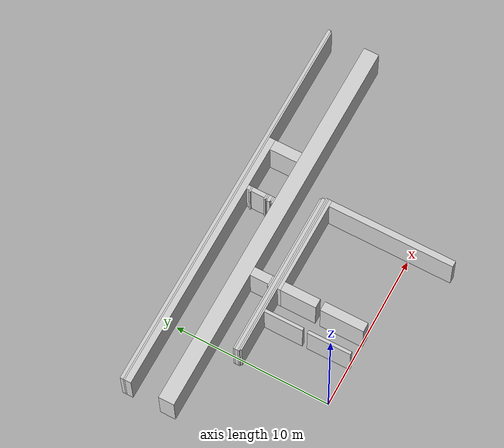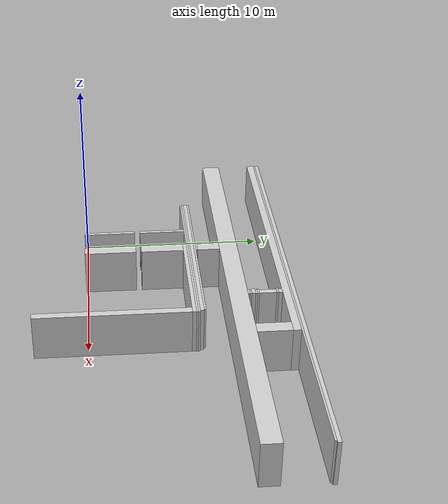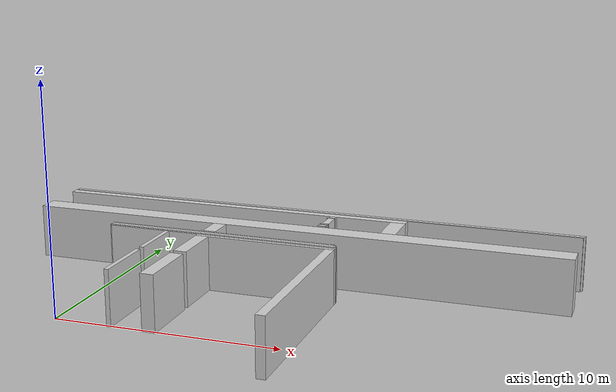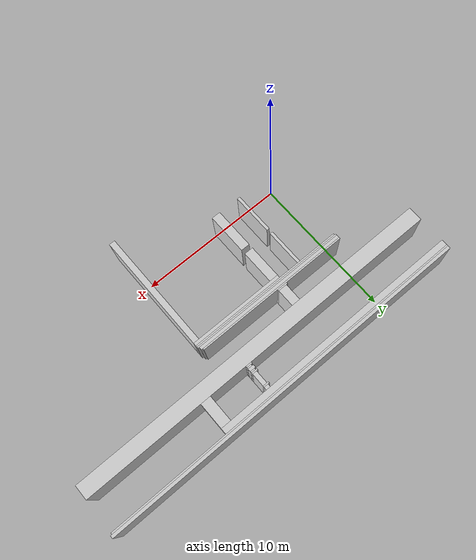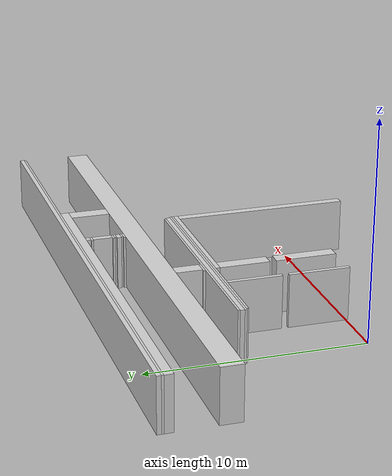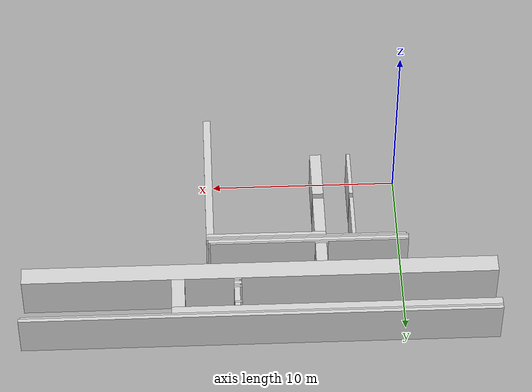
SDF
<sdf version="1.8">
 <model name="campus_first_floor">
  <static>true</static>
  <link name="wall_5">
   <pose>7.70000 10.70000 1.25000 0 0 0</pose>
   <collision name="collision"><geometry><box><size>25.30000 0.20000 2.50000</size></box></geometry></collision>
   <visual name="visual">
    <geometry><box><size>25.30000 0.20000 2.50000</size></box></geometry>
    <material>
     <ambient>0.72 0.72 0.72 1</ambient>
     <diffuse>0.82 0.82 0.82 1</diffuse>
     <specular>0.05 0.05 0.05 1</specular>
    </material>
   </visual>
  </link>
  <link name="wall_6">
   <pose>7.65000 10.55000 1.25000 0 0 0</pose>
   <collision name="collision"><geometry><box><size>25.20000 0.10000 2.50000</size></box></geometry></collision>
   <visual name="visual">
    <geometry><box><size>25.20000 0.10000 2.50000</size></box></geometry>
    <material>
     <ambient>0.72 0.72 0.72 1</ambient>
     <diffuse>0.82 0.82 0.82 1</diffuse>
     <specular>0.05 0.05 0.05 1</specular>
    </material>
   </visual>
  </link>
  <link name="wall_7">
   <pose>3.70000 10.30000 1.25000 0 0 0</pose>
   <collision name="collision"><geometry><box><size>17.30000 0.40000 2.50000</size></box></geometry></collision>
   <visual name="visual">
    <geometry><box><size>17.30000 0.40000 2.50000</size></box></geometry>
    <material>
     <ambient>0.72 0.72 0.72 1</ambient>
     <diffuse>0.82 0.82 0.82 1</diffuse>
     <specular>0.05 0.05 0.05 1</specular>
    </material>
   </visual>
  </link>
  <link name="wall_10">
   <pose>8.90000 10.00000 1.25000 0 0 0</pose>
   <collision name="collision"><geometry><box><size>0.30000 0.20000 2.50000</size></box></geometry></collision>
   <visual name="visual">
    <geometry><box><size>0.30000 0.20000 2.50000</size></box></geometry>
    <material>
     <ambient>0.72 0.72 0.72 1</ambient>
     <diffuse>0.82 0.82 0.82 1</diffuse>
     <specular>0.05 0.05 0.05 1</specular>
    </material>
   </visual>
  </link>
  <link name="wall_11">
   <pose>8.85000 9.85000 1.25000 0 0 0</pose>
   <collision name="collision"><geometry><box><size>0.40000 0.10000 2.50000</size></box></geometry></collision>
   <visual name="visual">
    <geometry><box><size>0.40000 0.10000 2.50000</size></box></geometry>
    <material>
     <ambient>0.72 0.72 0.72 1</ambient>
     <diffuse>0.82 0.82 0.82 1</diffuse>
     <specular>0.05 0.05 0.05 1</specular>
    </material>
   </visual>
  </link>
  <link name="wall_12">
   <pose>8.90000 9.35000 1.25000 0 0 0</pose>
   <collision name="collision"><geometry><box><size>0.30000 0.90000 2.50000</size></box></geometry></collision>
   <visual name="visual">
    <geometry><box><size>0.30000 0.90000 2.50000</size></box></geometry>
    <material>
     <ambient>0.72 0.72 0.72 1</ambient>
     <diffuse>0.82 0.82 0.82 1</diffuse>
     <specular>0.05 0.05 0.05 1</specular>
    </material>
   </visual>
  </link>
  <link name="wall_13">
   <pose>8.85000 8.85000 1.25000 0 0 0</pose>
   <collision name="collision"><geometry><box><size>0.40000 0.10000 2.50000</size></box></geometry></collision>
   <visual name="visual">
    <geometry><box><size>0.40000 0.10000 2.50000</size></box></geometry>
    <material>
     <ambient>0.72 0.72 0.72 1</ambient>
     <diffuse>0.82 0.82 0.82 1</diffuse>
     <specular>0.05 0.05 0.05 1</specular>
    </material>
   </visual>
  </link>
  <link name="wall_14">
   <pose>8.90000 8.75000 1.25000 0 0 0</pose>
   <collision name="collision"><geometry><box><size>0.30000 0.10000 2.50000</size></box></geometry></collision>
   <visual name="visual">
    <geometry><box><size>0.30000 0.10000 2.50000</size></box></geometry>
    <material>
     <ambient>0.72 0.72 0.72 1</ambient>
     <diffuse>0.82 0.82 0.82 1</diffuse>
     <specular>0.05 0.05 0.05 1</specular>
    </material>
   </visual>
  </link>
  <link name="wall_15">
   <pose>8.85000 8.60000 1.25000 0 0 0</pose>
   <collision name="collision"><geometry><box><size>0.40000 0.20000 2.50000</size></box></geometry></collision>
   <visual name="visual">
    <geometry><box><size>0.40000 0.20000 2.50000</size></box></geometry>
    <material>
     <ambient>0.72 0.72 0.72 1</ambient>
     <diffuse>0.82 0.82 0.82 1</diffuse>
     <specular>0.05 0.05 0.05 1</specular>
    </material>
   </visual>
  </link>
  <link name="wall_16">
   <pose>8.90000 8.45000 1.25000 0 0 0</pose>
   <collision name="collision"><geometry><box><size>0.30000 0.10000 2.50000</size></box></geometry></collision>
   <visual name="visual">
    <geometry><box><size>0.30000 0.10000 2.50000</size></box></geometry>
    <material>
     <ambient>0.72 0.72 0.72 1</ambient>
     <diffuse>0.82 0.82 0.82 1</diffuse>
     <specular>0.05 0.05 0.05 1</specular>
    </material>
   </visual>
  </link>
  <link name="wall_17">
   <pose>12.00000 9.20000 1.25000 0 0 0</pose>
   <collision name="collision"><geometry><box><size>0.70000 1.80000 2.50000</size></box></geometry></collision>
   <visual name="visual">
    <geometry><box><size>0.70000 1.80000 2.50000</size></box></geometry>
    <material>
     <ambient>0.72 0.72 0.72 1</ambient>
     <diffuse>0.82 0.82 0.82 1</diffuse>
     <specular>0.05 0.05 0.05 1</specular>
    </material>
   </visual>
  </link>
  <link name="wall_18">
   <pose>8.85000 8.35000 1.25000 0 0 0</pose>
   <collision name="collision"><geometry><box><size>0.40000 0.10000 2.50000</size></box></geometry></collision>
   <visual name="visual">
    <geometry><box><size>0.40000 0.10000 2.50000</size></box></geometry>
    <material>
     <ambient>0.72 0.72 0.72 1</ambient>
     <diffuse>0.82 0.82 0.82 1</diffuse>
     <specular>0.05 0.05 0.05 1</specular>
    </material>
   </visual>
  </link>
  <link name="wall_21">
   <pose>7.65000 7.80000 1.25000 0 0 0</pose>
   <collision name="collision"><geometry><box><size>25.20000 1.00000 2.50000</size></box></geometry></collision>
   <visual name="visual">
    <geometry><box><size>25.20000 1.00000 2.50000</size></box></geometry>
    <material>
     <ambient>0.72 0.72 0.72 1</ambient>
     <diffuse>0.82 0.82 0.82 1</diffuse>
     <specular>0.05 0.05 0.05 1</specular>
    </material>
   </visual>
  </link>
  <link name="wall_39">
   <pose>4.35000 6.70000 1.25000 0 0 0</pose>
   <collision name="collision"><geometry><box><size>0.60000 1.20000 2.50000</size></box></geometry></collision>
   <visual name="visual">
    <geometry><box><size>0.60000 1.20000 2.50000</size></box></geometry>
    <material>
     <ambient>0.72 0.72 0.72 1</ambient>
     <diffuse>0.82 0.82 0.82 1</diffuse>
     <specular>0.05 0.05 0.05 1</specular>
    </material>
   </visual>
  </link>
  <link name="wall_41">
   <pose>4.30000 6.05000 1.25000 0 0 0</pose>
   <collision name="collision"><geometry><box><size>0.70000 0.10000 2.50000</size></box></geometry></collision>
   <visual name="visual">
    <geometry><box><size>0.70000 0.10000 2.50000</size></box></geometry>
    <material>
     <ambient>0.72 0.72 0.72 1</ambient>
     <diffuse>0.82 0.82 0.82 1</diffuse>
     <specular>0.05 0.05 0.05 1</specular>
    </material>
   </visual>
  </link>
  <link name="wall_44">
   <pose>4.95000 5.95000 1.25000 0 0 0</pose>
   <collision name="collision"><geometry><box><size>10.60000 0.10000 2.50000</size></box></geometry></collision>
   <visual name="visual">
    <geometry><box><size>10.60000 0.10000 2.50000</size></box></geometry>
    <material>
     <ambient>0.72 0.72 0.72 1</ambient>
     <diffuse>0.82 0.82 0.82 1</diffuse>
     <specular>0.05 0.05 0.05 1</specular>
    </material>
   </visual>
  </link>
  <link name="wall_48">
   <pose>5.00000 5.80000 1.25000 0 0 0</pose>
   <collision name="collision"><geometry><box><size>10.70000 0.20000 2.50000</size></box></geometry></collision>
   <visual name="visual">
    <geometry><box><size>10.70000 0.20000 2.50000</size></box></geometry>
    <material>
     <ambient>0.72 0.72 0.72 1</ambient>
     <diffuse>0.82 0.82 0.82 1</diffuse>
     <specular>0.05 0.05 0.05 1</specular>
    </material>
   </visual>
  </link>
  <link name="wall_49">
   <pose>5.05000 5.65000 1.25000 0 0 0</pose>
   <collision name="collision"><geometry><box><size>10.80000 0.10000 2.50000</size></box></geometry></collision>
   <visual name="visual">
    <geometry><box><size>10.80000 0.10000 2.50000</size></box></geometry>
    <material>
     <ambient>0.72 0.72 0.72 1</ambient>
     <diffuse>0.82 0.82 0.82 1</diffuse>
     <specular>0.05 0.05 0.05 1</specular>
    </material>
   </visual>
  </link>
  <link name="wall_50">
   <pose>5.10000 5.55000 1.25000 0 0 0</pose>
   <collision name="collision"><geometry><box><size>10.70000 0.10000 2.50000</size></box></geometry></collision>
   <visual name="visual">
    <geometry><box><size>10.70000 0.10000 2.50000</size></box></geometry>
    <material>
     <ambient>0.72 0.72 0.72 1</ambient>
     <diffuse>0.82 0.82 0.82 1</diffuse>
     <specular>0.05 0.05 0.05 1</specular>
    </material>
   </visual>
  </link>
  <link name="wall_51">
   <pose>7.25000 5.40000 1.25000 0 0 0</pose>
   <collision name="collision"><geometry><box><size>6.40000 0.20000 2.50000</size></box></geometry></collision>
   <visual name="visual">
    <geometry><box><size>6.40000 0.20000 2.50000</size></box></geometry>
    <material>
     <ambient>0.72 0.72 0.72 1</ambient>
     <diffuse>0.82 0.82 0.82 1</diffuse>
     <specular>0.05 0.05 0.05 1</specular>
    </material>
   </visual>
  </link>
  <link name="wall_86">
   <pose>4.35000 4.15000 1.25000 0 0 0</pose>
   <collision name="collision"><geometry><box><size>0.60000 2.30000 2.50000</size></box></geometry></collision>
   <visual name="visual">
    <geometry><box><size>0.60000 2.30000 2.50000</size></box></geometry>
    <material>
     <ambient>0.72 0.72 0.72 1</ambient>
     <diffuse>0.82 0.82 0.82 1</diffuse>
     <specular>0.05 0.05 0.05 1</specular>
    </material>
   </visual>
  </link>
  <link name="wall_88">
   <pose>2.55000 4.25000 1.25000 0 0 0</pose>
   <collision name="collision"><geometry><box><size>0.20000 2.50000 2.50000</size></box></geometry></collision>
   <visual name="visual">
    <geometry><box><size>0.20000 2.50000 2.50000</size></box></geometry>
    <material>
     <ambient>0.72 0.72 0.72 1</ambient>
     <diffuse>0.82 0.82 0.82 1</diffuse>
     <specular>0.05 0.05 0.05 1</specular>
    </material>
   </visual>
  </link>
  <link name="wall_156">
   <pose>4.35000 1.30000 1.25000 0 0 0</pose>
   <collision name="collision"><geometry><box><size>0.60000 2.80000 2.50000</size></box></geometry></collision>
   <visual name="visual">
    <geometry><box><size>0.60000 2.80000 2.50000</size></box></geometry>
    <material>
     <ambient>0.72 0.72 0.72 1</ambient>
     <diffuse>0.82 0.82 0.82 1</diffuse>
     <specular>0.05 0.05 0.05 1</specular>
    </material>
   </visual>
  </link>
  <link name="wall_158">
   <pose>2.55000 1.30000 1.25000 0 0 0</pose>
   <collision name="collision"><geometry><box><size>0.20000 2.80000 2.50000</size></box></geometry></collision>
   <visual name="visual">
    <geometry><box><size>0.20000 2.80000 2.50000</size></box></geometry>
    <material>
     <ambient>0.72 0.72 0.72 1</ambient>
     <diffuse>0.82 0.82 0.82 1</diffuse>
     <specular>0.05 0.05 0.05 1</specular>
    </material>
   </visual>
  </link>
  <link name="wall_244">
   <pose>10.25000 1.25000 1.25000 0 0 0</pose>
   <collision name="collision"><geometry><box><size>0.40000 8.10000 2.50000</size></box></geometry></collision>
   <visual name="visual">
    <geometry><box><size>0.40000 8.10000 2.50000</size></box></geometry>
    <material>
     <ambient>0.72 0.72 0.72 1</ambient>
     <diffuse>0.82 0.82 0.82 1</diffuse>
     <specular>0.05 0.05 0.05 1</specular>
    </material>
   </visual>
  </link>
 </model>
</sdf>
